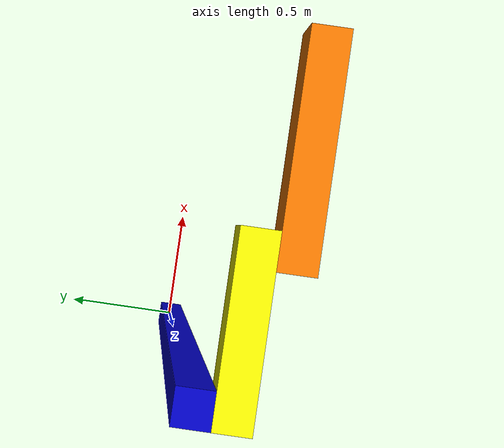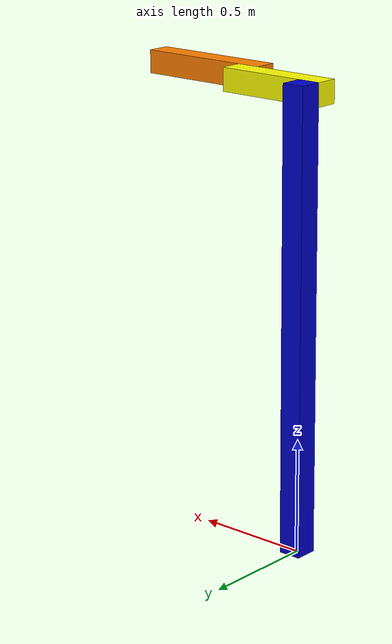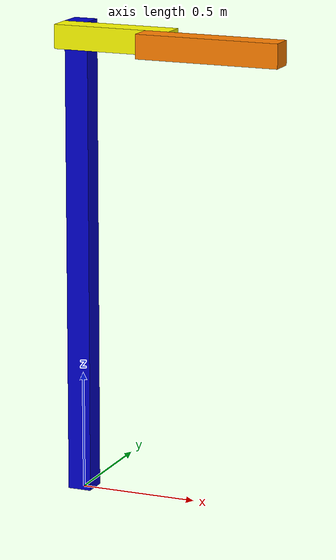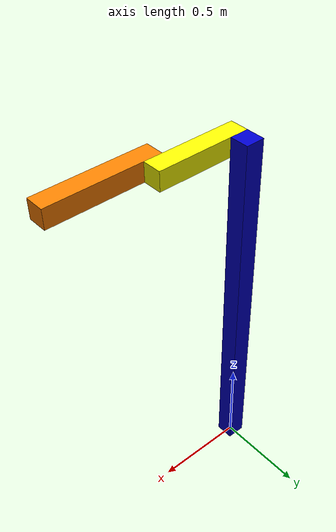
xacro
<?xml version="1.0"?>
<!-- Revolute-Revolute Manipulator -->
<robot xmlns:xacro="http://www.ros.org/wiki/xacro" name="rrbot">

  <!-- Import RRBot macro -->
  <xacro:include filename="$(find rrbot_description)/urdf/rrbot_description.urdf.xacro" />

  <!-- Import RRBot ros2_control description -->
  <xacro:include filename="$(find rrbot_description)/ros2_control/rrbot.ros2_control.xacro" />

  <!-- Used for fixing robot -->
  <link name="world"/>

  <xacro:rrbot parent="world">
    <origin xyz="0 0 0" rpy="1.57 0 0" />
  </xacro:rrbot>

  <xacro:rrbot_ros2_control
    name="RRBot" />

</robot>

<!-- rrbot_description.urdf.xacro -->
<robot xmlns:xacro="http://www.ros.org/wiki/xacro">

  <xacro:macro name="rrbot" params="parent *origin">

  <!-- Constants for robot dimensions -->
  <xacro:property name="mass" value="1" /> <!-- arbitrary value for mass -->
  <xacro:property name="width" value="0.1" /> <!-- Square dimensions (widthxwidth) of beams -->
  <xacro:property name="height1" value="2" /> <!-- Link 1 -->
  <xacro:property name="height2" value="0.5" /> <!-- Link 2 -->
  <xacro:property name="height3" value="0.6" /> <!-- Link 3 -->
  <xacro:property name="axel_offset" value="0.05" /> <!-- Space btw top of beam and the each joint -->

  <material name="orange">
     <color rgba="1 0.5 0 1"/>
  </material>

  <material name="yellow">
     <color rgba="1 1 0 1"/>
  </material>

  <material name="blue">
    <color rgba="0.0 0.0 0.8 1.0"/>
  </material>

  <joint name="base_joint" type="fixed">
    <xacro:insert_block name="origin" />
    <parent link="${parent}"/>
    <child link="base_link" />
  </joint>

  <!-- Base Link -->
  <link name="base_link">
    <collision>
      <origin xyz="0 ${height1/2} 0" rpy="0 0 0"/>
      <geometry>
        <box size="0.05 ${height1} 0.05"/>
      </geometry>
    </collision>

    <visual>
      <origin xyz="0 ${height1/2} 0" rpy="0 0 0"/>
      <geometry>
        <box size="${width} ${height1} ${width}"/>
      </geometry>
      <material name="blue"/>
    </visual>

    <inertial>
      <origin xyz="0 ${height1/2} 0" rpy="0 0 0"/>
      <mass value="${mass}"/>
      <inertia
        ixx="${mass / 12.0 * (width*width + height1*height1)}" ixy="0.0" ixz="0.0"
        izz="${mass / 12.0 * (height1*height1 + width*width)}" iyz="0.0"
        iyy="${mass / 12.0 * (width*width + width*width)}"/>
      </inertial>
    </link>

    <joint name="joint1" type="continuous">
      <parent link="base_link"/>
      <child link="link1"/>
      <origin xyz="0 ${height1 - axel_offset} ${width}" rpy="0 0 0"/>
      <axis xyz="0 0 1"/>
      <dynamics damping="0.7"/>
    </joint>

    <!-- Middle Link -->
    <link name="link1">
      <collision>
        <origin xyz="${height2/2 - axel_offset} 0 0" rpy="0 0 0"/>
        <geometry>
          <box size="${height2} ${width} ${width}"/>
        </geometry>
      </collision>

      <visual>
        <origin xyz="${height2/2 - axel_offset} 0 0" rpy="0 0 0"/>
        <geometry>
          <box size="${height2} ${width} ${width}"/>
        </geometry>
        <material name="yellow"/>
      </visual>

      <inertial>
        <origin xyz="${height2/2 - axel_offset} 0 0" rpy="0 0 0"/>
        <mass value="${mass}"/>
        <inertia
          izz="${mass / 12.0 * (width*width + height2*height2)}" ixy="0.0" ixz="0.0"
          iyy="${mass / 12.0 * (height2*height2 + width*width)}" iyz="0.0"
          ixx="${mass / 12.0 * (width*width + width*width)}"/>
        </inertial>
      </link>

      <joint name="joint2" type="continuous">
        <parent link="link1"/>
        <child link="link2"/>
        <origin xyz="${height2 - axel_offset*2} 0 ${width}" rpy="0 0 0"/>
        <axis xyz="0 0 1"/>
        <dynamics damping="0.7"/>
      </joint>

      <!-- Top Link -->
      <link name="link2">
        <collision>
          <origin xyz="${height3/2 - axel_offset} 0 0" rpy="0 0 0"/>
          <geometry>
            <box size="${height3} ${width} ${width}"/>
          </geometry>
        </collision>

        <visual>
          <origin xyz="${height3/2 - axel_offset} 0 0" rpy="0 0 0"/>
          <geometry>
            <box size="${height3} ${width} ${width}"/>
          </geometry>
          <material name="orange"/>
        </visual>

        <inertial>
          <origin xyz="${height3/2 - axel_offset} 0 0" rpy="0 0 0"/>
          <mass value="${mass}"/>
          <inertia
            izz="${mass / 12.0 * (width*width + height3*height3)}" ixy="0.0" ixz="0.0"
            iyy="${mass / 12.0 * (height3*height3 + width*width)}" iyz="0.0"
            ixx="${mass / 12.0 * (width*width + width*width)}"/>
          </inertial>
        </link>

        <joint name="tool_joint" type="fixed">
          <origin xyz="1 0 0" rpy="0 0 0" />
          <parent link="link2"/>
          <child link="tool_link" />
        </joint>

        <!-- Tool Link -->
        <link name="tool_link">
        </link>

  </xacro:macro>

</robot>
